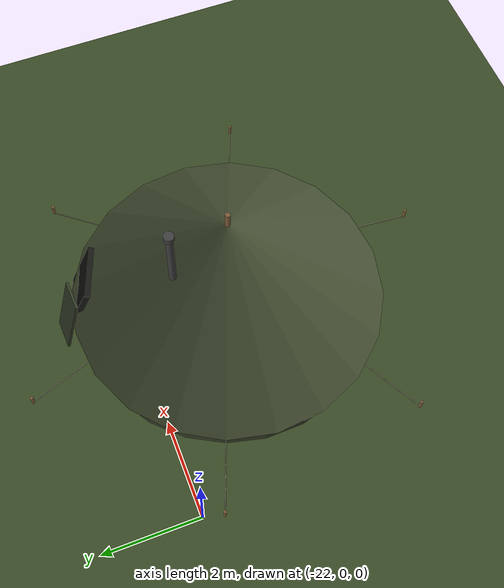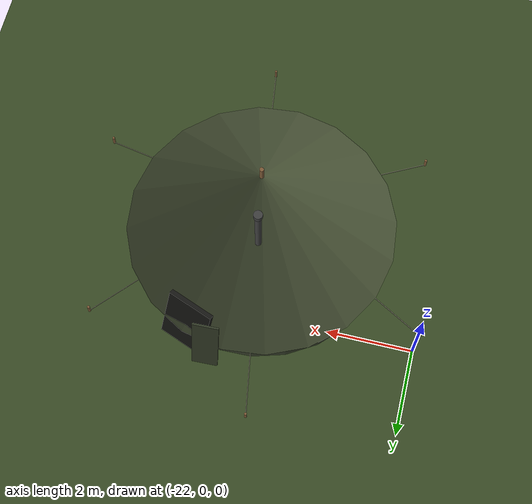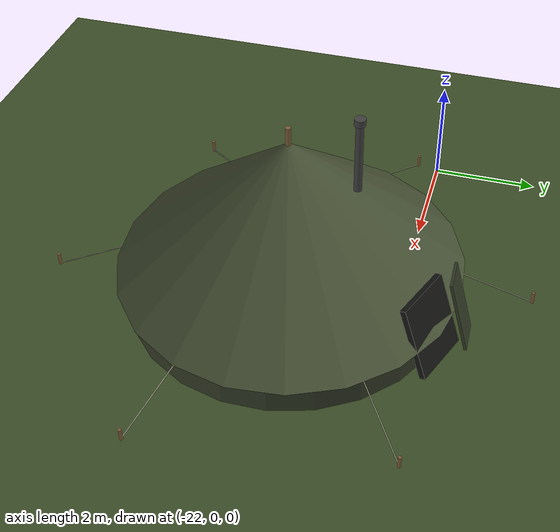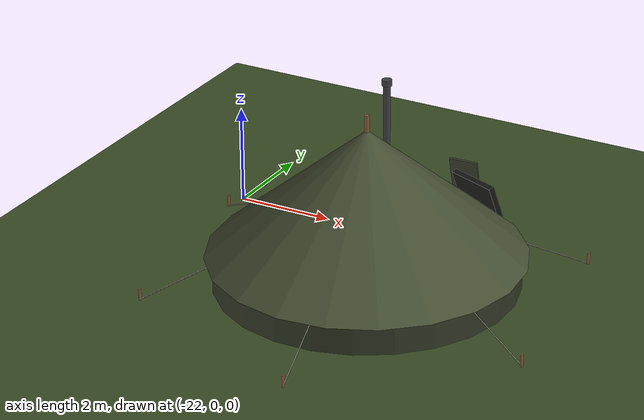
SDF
<sdf version="1.11">
 <world name="hive_base">
  <model name="ground_plane">
   <static>true</static>
   <link name="link">
    <collision name="collision">
     <geometry><plane><normal>0 0 1</normal><size>1000 1000</size></plane></geometry>
     <surface><friction><ode><mu>1.0</mu><mu2>1.0</mu2></ode></friction></surface>
    </collision>
    <visual name="visual">
     <geometry><plane><normal>0 0 1</normal><size>1000 1000</size></plane></geometry>
     <material>
      <ambient>0.23 0.3 0.15 1</ambient>
      <diffuse>0.23 0.3 0.15 1</diffuse>
      <specular>0.05 0.05 0.05 1</specular>
     </material>
    </visual>
   </link>
  </model>
  <model name="tent_4">
   <static>true</static>
   <pose>-18 -2 0 0 0 1.2</pose>
   <link name="link">
    <visual name="v1">
     <pose>0 0 0.3 0 0 0</pose>
     <geometry><cylinder><radius>3</radius><length>0.6</length></cylinder></geometry>
     <material>
      <ambient>0.2 0.23 0.15 1</ambient>
      <diffuse>0.2 0.23 0.15 1</diffuse>
      <specular>0.05 0.05 0.05 1</specular>
     </material>
    </visual>
    <collision name="c1">
     <pose>0 0 0.3 0 0 0</pose>
     <geometry><cylinder><radius>3</radius><length>0.6</length></cylinder></geometry>
    </collision>
    <visual name="v2">
     <pose>0 0 1.9 0 0 0</pose>
     <geometry><cone><radius>3.15</radius><length>2.6</length></cone></geometry>
     <material>
      <ambient>0.27 0.31 0.2 1</ambient>
      <diffuse>0.27 0.31 0.2 1</diffuse>
      <specular>0.05 0.05 0.05 1</specular>
     </material>
    </visual>
    <collision name="c2">
     <pose>0 0 1.9 0 0 0</pose>
     <geometry><cylinder><radius>1.89</radius><length>2.6</length></cylinder></geometry>
    </collision>
    <visual name="v3">
     <pose>0 0 3.3 0 0 0</pose>
     <geometry><cylinder><radius>0.05</radius><length>0.4</length></cylinder></geometry>
     <material>
      <ambient>0.5 0.36 0.22 1</ambient>
      <diffuse>0.5 0.36 0.22 1</diffuse>
      <specular>0.05 0.05 0.05 1</specular>
     </material>
    </visual>
    <visual name="v4">
     <pose>1 0.6 3 0 0 0</pose>
     <geometry><cylinder><radius>0.07</radius><length>1.4</length></cylinder></geometry>
     <material>
      <ambient>0.25 0.25 0.25 1</ambient>
      <diffuse>0.25 0.25 0.25 1</diffuse>
      <specular>0.05 0.05 0.05 1</specular>
     </material>
    </visual>
    <visual name="v5">
     <pose>1 0.6 3.7 0 0 0</pose>
     <geometry><cylinder><radius>0.1</radius><length>0.12</length></cylinder></geometry>
     <material>
      <ambient>0.25 0.25 0.25 1</ambient>
      <diffuse>0.25 0.25 0.25 1</diffuse>
      <specular>0.05 0.05 0.05 1</specular>
     </material>
    </visual>
    <visual name="v6">
     <pose>2.95 0 0.7 0 -0.35 0</pose>
     <geometry><box><size>0.12 1.1 1.4</size></box></geometry>
     <material>
      <ambient>0.08 0.08 0.07 1</ambient>
      <diffuse>0.08 0.08 0.07 1</diffuse>
      <specular>0.05 0.05 0.05 1</specular>
     </material>
    </visual>
    <visual name="v7">
     <pose>3.15 0.65 0.75 0 -0.25 0.4</pose>
     <geometry><box><size>0.05 0.6 1.5</size></box></geometry>
     <material>
      <ambient>0.2 0.23 0.15 1</ambient>
      <diffuse>0.2 0.23 0.15 1</diffuse>
      <specular>0.05 0.05 0.05 1</specular>
     </material>
    </visual>
    <visual name="v8">
     <pose>3.204 1.85 0.3 0 1.166 3.665</pose>
     <geometry><cylinder><radius>0.01</radius><length>1.523</length></cylinder></geometry>
     <material>
      <ambient>0.6 0.6 0.5 1</ambient>
      <diffuse>0.6 0.6 0.5 1</diffuse>
      <specular>0.05 0.05 0.05 1</specular>
     </material>
     <cast_shadows>false</cast_shadows>
    </visual>
    <visual name="v9">
     <pose>3.811 2.2 0.1 0 0 0</pose>
     <geometry><cylinder><radius>0.03</radius><length>0.25</length></cylinder></geometry>
     <material>
      <ambient>0.5 0.36 0.22 1</ambient>
      <diffuse>0.5 0.36 0.22 1</diffuse>
      <specular>0.05 0.05 0.05 1</specular>
     </material>
     <cast_shadows>false</cast_shadows>
    </visual>
    <visual name="v10">
     <pose>0 3.7 0.3 0 1.166 4.712</pose>
     <geometry><cylinder><radius>0.01</radius><length>1.523</length></cylinder></geometry>
     <material>
      <ambient>0.6 0.6 0.5 1</ambient>
      <diffuse>0.6 0.6 0.5 1</diffuse>
      <specular>0.05 0.05 0.05 1</specular>
     </material>
     <cast_shadows>false</cast_shadows>
    </visual>
    <visual name="v11">
     <pose>0 4.4 0.1 0 0 0</pose>
     <geometry><cylinder><radius>0.03</radius><length>0.25</length></cylinder></geometry>
     <material>
      <ambient>0.5 0.36 0.22 1</ambient>
      <diffuse>0.5 0.36 0.22 1</diffuse>
      <specular>0.05 0.05 0.05 1</specular>
     </material>
     <cast_shadows>false</cast_shadows>
    </visual>
    <visual name="v12">
     <pose>-3.204 1.85 0.3 0 1.166 5.76</pose>
     <geometry><cylinder><radius>0.01</radius><length>1.523</length></cylinder></geometry>
     <material>
      <ambient>0.6 0.6 0.5 1</ambient>
      <diffuse>0.6 0.6 0.5 1</diffuse>
      <specular>0.05 0.05 0.05 1</specular>
     </material>
     <cast_shadows>false</cast_shadows>
    </visual>
    <visual name="v13">
     <pose>-3.811 2.2 0.1 0 0 0</pose>
     <geometry><cylinder><radius>0.03</radius><length>0.25</length></cylinder></geometry>
     <material>
      <ambient>0.5 0.36 0.22 1</ambient>
      <diffuse>0.5 0.36 0.22 1</diffuse>
      <specular>0.05 0.05 0.05 1</specular>
     </material>
     <cast_shadows>false</cast_shadows>
    </visual>
    <visual name="v14">
     <pose>-3.204 -1.85 0.3 0 1.166 6.807</pose>
     <geometry><cylinder><radius>0.01</radius><length>1.523</length></cylinder></geometry>
     <material>
      <ambient>0.6 0.6 0.5 1</ambient>
      <diffuse>0.6 0.6 0.5 1</diffuse>
      <specular>0.05 0.05 0.05 1</specular>
     </material>
     <cast_shadows>false</cast_shadows>
    </visual>
    <visual name="v15">
     <pose>-3.811 -2.2 0.1 0 0 0</pose>
     <geometry><cylinder><radius>0.03</radius><length>0.25</length></cylinder></geometry>
     <material>
      <ambient>0.5 0.36 0.22 1</ambient>
      <diffuse>0.5 0.36 0.22 1</diffuse>
      <specular>0.05 0.05 0.05 1</specular>
     </material>
     <cast_shadows>false</cast_shadows>
    </visual>
    <visual name="v16">
     <pose>-0 -3.7 0.3 0 1.166 7.854</pose>
     <geometry><cylinder><radius>0.01</radius><length>1.523</length></cylinder></geometry>
     <material>
      <ambient>0.6 0.6 0.5 1</ambient>
      <diffuse>0.6 0.6 0.5 1</diffuse>
      <specular>0.05 0.05 0.05 1</specular>
     </material>
     <cast_shadows>false</cast_shadows>
    </visual>
    <visual name="v17">
     <pose>-0 -4.4 0.1 0 0 0</pose>
     <geometry><cylinder><radius>0.03</radius><length>0.25</length></cylinder></geometry>
     <material>
      <ambient>0.5 0.36 0.22 1</ambient>
      <diffuse>0.5 0.36 0.22 1</diffuse>
      <specular>0.05 0.05 0.05 1</specular>
     </material>
     <cast_shadows>false</cast_shadows>
    </visual>
    <visual name="v18">
     <pose>3.204 -1.85 0.3 0 1.166 8.901</pose>
     <geometry><cylinder><radius>0.01</radius><length>1.523</length></cylinder></geometry>
     <material>
      <ambient>0.6 0.6 0.5 1</ambient>
      <diffuse>0.6 0.6 0.5 1</diffuse>
      <specular>0.05 0.05 0.05 1</specular>
     </material>
     <cast_shadows>false</cast_shadows>
    </visual>
    <visual name="v19">
     <pose>3.811 -2.2 0.1 0 0 0</pose>
     <geometry><cylinder><radius>0.03</radius><length>0.25</length></cylinder></geometry>
     <material>
      <ambient>0.5 0.36 0.22 1</ambient>
      <diffuse>0.5 0.36 0.22 1</diffuse>
      <specular>0.05 0.05 0.05 1</specular>
     </material>
     <cast_shadows>false</cast_shadows>
    </visual>
   </link>
  </model>
 </world>
</sdf>
